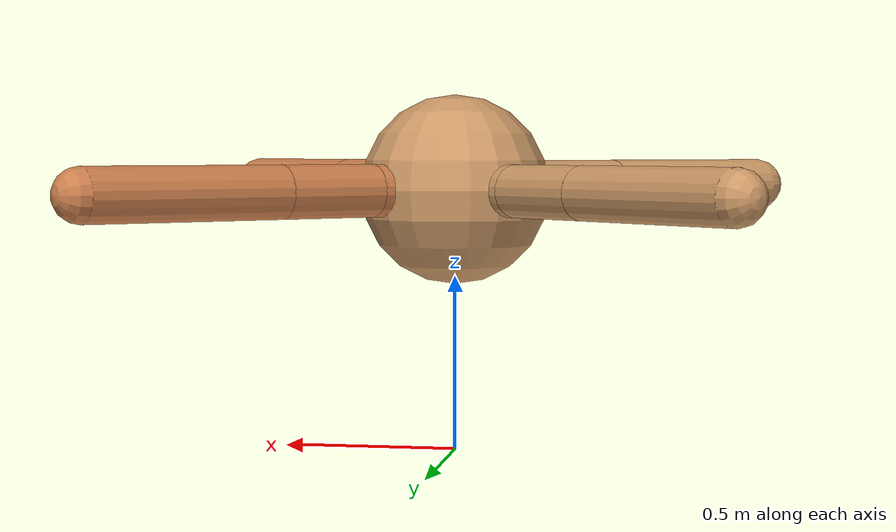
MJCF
<?xml version="1.0" ?>
<mujoco model="ant">

	<compiler angle="degree" coordinate="local" inertiafromgeom="true"/>

	<option integrator="RK4" timestep="0.01"/>

	<custom>

		<numeric data="0.0 0.0 0.55 1.0 0.0 0.0 0.0 0.0 1.0 0.0 -1.0 0.0 -1.0 0.0 1.0" name="init_qpos"/>

	</custom>

	<default>

		<joint armature="1" damping="1" limited="true"/>

		<geom conaffinity="0" condim="3" density="5.0" friction="1.5 0.1 0.1" margin="0.01" rgba="0.8 0.6 0.4 1"/>

	</default>

	<worldbody>

		<body name="torso" pos="0 0 0.75">

			<geom name="torso_geom" pos="0 0 0" size="0.26998746850129024" type="sphere"/>

			<!--joint armature="0" damping="0" limited="false" margin="0.01" name="root" pos="0 0 0" type="free"/-->

			<body name="front_left_leg" pos="0 0 0">

				<geom fromto="0 0 0 0.2 0.2 0" name="aux_1_geom" size="0.07415077782285265" type="capsule" rgba=".8 .5 .3 1"/>

				<body name="aux_1" pos="0.2 0.2 0">

					<joint axis="0 0 1" name="hip_1" pos="0.0 0.0 0.0" range="-40 40" type="hinge"/>

					<geom fromto="0 0 0 0.20459391335383909 0.20459391335383909 0" name="left_leg_geom" size="0.07415077782285265" type="capsule" rgba=".8 .5 .3 1"/>

					<body pos="0.20459391335383909 0.20459391335383909 0" name="front_left_foot">

						<joint axis="-1 1 0" name="ankle_1" pos="0.0 0.0 0.0" range="30 100" type="hinge"/>

						<geom fromto="0 0 0 0.40918782670767817 0.40918782670767817 0" name="left_ankle_geom" size="0.07415077782285265" type="capsule" rgba=".8 .5 .3 1"/>

					</body>

				</body>

			</body>

			<body name="front_right_leg" pos="0 0 0">

				<geom fromto="0 0 0 -0.2 0.2 0" name="aux_2_geom" size="0.0735180281441261" type="capsule"/>

				<body name="aux_2" pos="-0.2 0.2 0">

					<joint axis="0 0 1" name="hip_2" pos="0.0 0.0 0.0" range="-40 40" type="hinge"/>

					<geom fromto="0 0 0 -0.20071684853063376 0.20071684853063376 0" name="right_leg_geom" size="0.0735180281441261" type="capsule"/>

					<body pos="-0.20071684853063376 0.20071684853063376 0" name="front_right_foot">

						<joint axis="1 1 0" name="ankle_2" pos="0.0 0.0 0.0" range="-100 -30" type="hinge"/>

						<geom fromto="0 0 0 -0.4014336970612675 0.4014336970612675 0" name="right_ankle_geom" size="0.0735180281441261" type="capsule"/>

					</body>

				</body>

			</body>

			<body name="left_back_leg" pos="0 0 0">

				<geom fromto="0 0 0 -0.2 -0.2 0" name="aux_3_geom" size="0.0824875187035409" type="capsule"/>

				<body name="aux_3" pos="-0.2 -0.2 0">

					<joint axis="0 0 1" name="hip_3" pos="0.0 0.0 0.0" range="-40 40" type="hinge"/>

					<geom fromto="0 0 0 -0.21737404701395563 -0.21737404701395563 0" name="back_leg_geom" size="0.0824875187035409" type="capsule"/>

					<body pos="-0.21737404701395563 -0.21737404701395563 0" name="left_back_foot">

						<joint axis="-1 1 0" name="ankle_3" pos="0.0 0.0 0.0" range="-100 -30" type="hinge"/>

						<geom fromto="0 0 0 -0.43474809402791126 -0.43474809402791126 0" name="third_ankle_geom" size="0.0824875187035409" type="capsule"/>

					</body>

				</body>

			</body>

			<body name="right_back_leg" pos="0 0 0">

				<geom fromto="0 0 0 0.2 -0.2 0" name="aux_4_geom" size="0.0841140434949318" type="capsule" rgba=".8 .5 .3 1"/>

				<body name="aux_4" pos="0.2 -0.2 0">

					<joint axis="0 0 1" name="hip_4" pos="0.0 0.0 0.0" range="-40 40" type="hinge"/>

					<geom fromto="0 0 0 0.19330799614812239 -0.19330799614812239 0" name="rightback_leg_geom" size="0.0841140434949318" type="capsule" rgba=".8 .5 .3 1"/>

					<body pos="0.19330799614812239 -0.19330799614812239 0" name="right_back_foot">

						<joint axis="1 1 0" name="ankle_4" pos="0.0 0.0 0.0" range="30 100" type="hinge"/>

						<geom fromto="0 0 0 0.38661599229624477 -0.38661599229624477 0" name="fourth_ankle_geom" size="0.0841140434949318" type="capsule" rgba=".8 .5 .3 1"/>

					</body>

				</body>

			</body>

		</body>

	</worldbody>

	<actuator>

		<motor ctrllimited="true" ctrlrange="-1.0 1.0" joint="hip_4" gear="150"/>

		<motor ctrllimited="true" ctrlrange="-1.0 1.0" joint="ankle_4" gear="150"/>

		<motor ctrllimited="true" ctrlrange="-1.0 1.0" joint="hip_1" gear="150"/>

		<motor ctrllimited="true" ctrlrange="-1.0 1.0" joint="ankle_1" gear="150"/>

		<motor ctrllimited="true" ctrlrange="-1.0 1.0" joint="hip_2" gear="150"/>

		<motor ctrllimited="true" ctrlrange="-1.0 1.0" joint="ankle_2" gear="150"/>

		<motor ctrllimited="true" ctrlrange="-1.0 1.0" joint="hip_3" gear="150"/>

		<motor ctrllimited="true" ctrlrange="-1.0 1.0" joint="ankle_3" gear="150"/>

	</actuator>

</mujoco>
